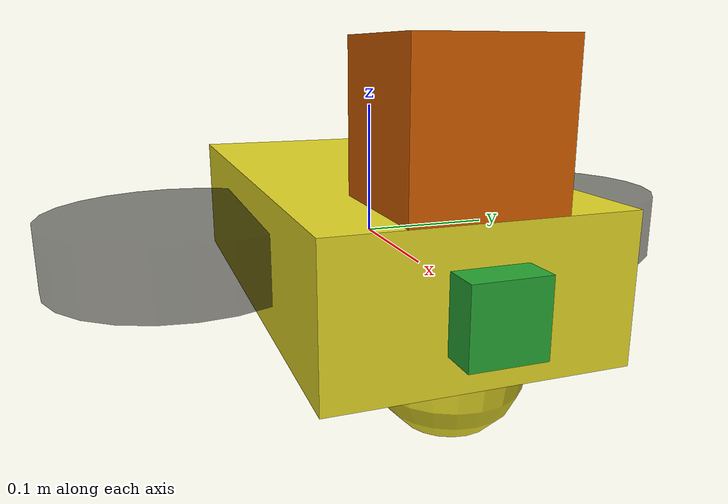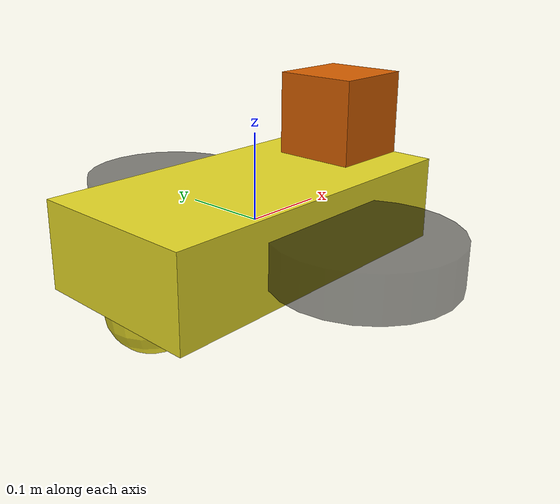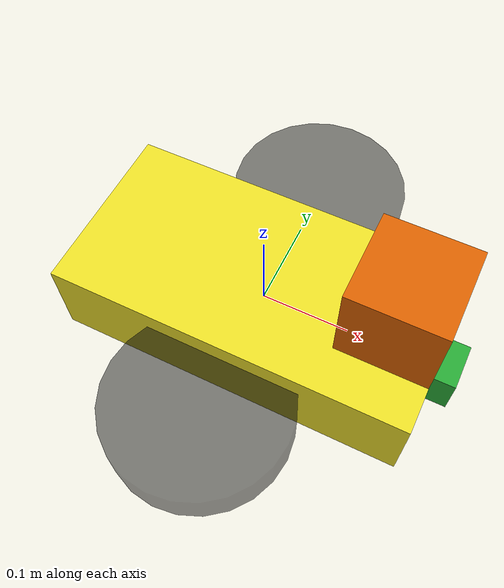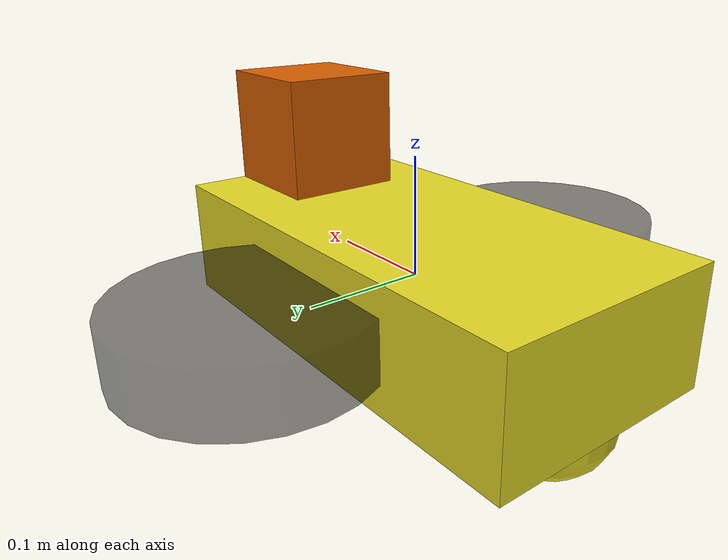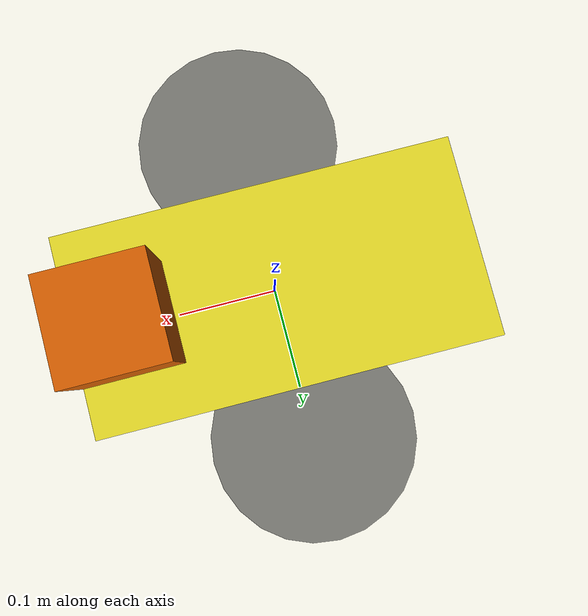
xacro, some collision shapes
<?xml version='1.0'?>
<robot name="udacity_bot" xmlns:xacro="http://www.ros.org/wiki/xacro">
    <xacro:include filename="$(find udacity_bot)/urdf/common.xacro"/>
    <xacro:include filename="$(find udacity_bot)/urdf/udacity_bot.gazebo"/>

    <link name="robot_footprint"></link>

    <joint name="robot_footprint_joint" type="fixed">
        <origin xyz="0 0 0" rpy="0 0 0" />
        <parent link="robot_footprint"/>
        <child link="chassis" />
    </joint>

    <link name='chassis'>
        <pose>0 0 0.1 0 0 0</pose>

        <inertial>
            <mass value="15.0"/>
            <origin xyz="0.0 0 0" rpy=" 0 0 0"/>
            <inertia
                ixx="0.1" ixy="0" ixz="0"
                iyy="0.1" iyz="0"
                izz="0.1"
                />
        </inertial>

        <collision name='collision'>
            <origin xyz="0 0 0" rpy=" 0 0 0"/>
            <geometry>
                <box size=".4 .2 .1"/>
            </geometry>
        </collision>

        <visual name='chassis_visual'>
            <origin xyz="0 0 0" rpy=" 0 0 0"/>
            <geometry>
                <box size=".4 .2 .1"/>
            </geometry>
        </visual>

        <collision name='back_caster_collision'>
            <origin xyz="-0.15 0 -0.05" rpy=" 0 0 0"/>
            <geometry>
                <sphere radius="0.0499"/>
            </geometry>
        </collision>

        <visual name='back_caster_visual'>
            <origin xyz="-0.15 0 -0.05" rpy=" 0 0 0"/>
            <geometry>
                <sphere radius="0.05"/>
            </geometry>
        </visual>

        <collision name='front_caster_collision'>
            <origin xyz="0.15 0 -0.05" rpy=" 0 0 0"/>
            <geometry>
                <sphere radius="0.0499"/>
            </geometry>
        </collision>

        <visual name='front_caster_visual'>
            <origin xyz="0.15 0 -0.05" rpy=" 0 0 0"/>
            <geometry>
                <sphere radius="0.05"/>
            </geometry>
        </visual>

    </link>

    <xacro:wheel wheel_prefix="left" wheel_mass="5" wheel_radius="0.1" wheel_thickness="0.05" parent="chassis">
		<origin xyz="0 0.15 0" rpy="${-pi/2} 0 0"/>
    </xacro:wheel>
    <xacro:wheel wheel_prefix="right" wheel_mass="5" wheel_radius="0.1" wheel_thickness="0.05" parent="chassis">
		<origin xyz="0 -0.15 0" rpy="${-pi/2} 0 0"/>
    </xacro:wheel>

    <link name="camera">
        <inertial>
            <mass value="0.1"/>
            <inertia ixx="1e-6" ixy="0" ixz="0" iyy="1e-6" iyz="0" izz="1e-6"/>
        </inertial>
        <visual>
            <origin xyz="0 0 0" rpy="0 0 0"/>
            <geometry>
                <box size="0.05 0.05 0.05"/>
            </geometry>
        </visual>
        <collision>
            <origin xyz="0 0 0" rpy="0 0 0"/>
            <geometry>
                <box size="0.05 0.05 0.05"/>
            </geometry>
        </collision>
    </link>

    <joint name="camera_joint" type="fixed">
        <parent link="chassis"/>
        <child link="camera"/>
        <origin xyz="0.2 0 0" rpy="0 0 0"/>
    </joint>

    <link name="laser">
        <inertial>
            <mass value="0.1"/>
            <inertia ixx="1e-6" ixy="0" ixz="0" iyy="1e-6" iyz="0" izz="1e-6"/>
        </inertial>
        <visual>
            <geometry>
                <mesh filename="package://udacity_bot/meshes/hokuyo.dae"/>
            </geometry>
        </visual>
        <collision>
            <geometry>
                <box size="0.1 0.1 0.1"/>
            </geometry>
        </collision>
    </link>

    <joint name="laser_joint" type="fixed">
        <parent link="chassis"/>
        <child link="laser"/>
        <origin xyz="0.15 0 0.1" rpy="0 0 0"/>
    </joint>

</robot>

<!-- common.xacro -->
<robot name="common" xmlns:xacro="http://ros.org/wiki/xacro">

	<!-- units begin -->
	<xacro:property name="inch" value="0.0254"/>
	<xacro:property name="lb" value="0.453592"/>
	<xacro:property name="deg" value="${pi/180.0}"/>
	<!-- units end -->

    <!-- inertial begin -->
    <xacro:macro name="cylinder_inertia" params="m r h">
		<inertia  ixx="${m*(3*r*r+h*h)/12}" ixy = "0" ixz = "0"
			iyy="${m*(3*r*r+h*h)/12}" iyz = "0"
			izz="${m*r*r/2}"
			/>
	</xacro:macro>
	<xacro:macro name="box_inertia" params="x y z mass">
		<inertia ixx="${0.0833333 * mass * (y*y + z*z)}" ixy="0.0" ixz="0.0"
			iyy="${0.0833333 * mass * (x*x + z*z)}" iyz="0.0"
			izz="${0.0833333 * mass * (x*x + y*y)}" />
	</xacro:macro>

    <xacro:macro name="sphere_inertia" params="r m">
		<inertia ixx="${0.4*m*r*r}" ixy="0.0" ixz="0.0"
			iyy="${0.4*m*r*r}" iyz="0.0"
			izz="${0.4*m*r*r}" />
    </xacro:macro>
    <!-- inertial end -->

	<xacro:macro name="wheel" params="wheel_prefix wheel_mass wheel_radius wheel_thickness parent *origin">
		<link name="${wheel_prefix}_wheel_link">
			<inertial>
				<mass value="${wheel_mass}"/>
				<cylinder_inertia m="${wheel_mass}" r="${wheel_radius}" h="${wheel_thickness}"/>
			</inertial>
			<visual>
				<origin xyz="0 0 0" rpy="${pi/2} 0 0"/>
				<geometry>
					<cylinder length="${wheel_thickness}" radius="${wheel_radius}"/>
				</geometry>
				<material name="black">
					<color rgba="0 0 0 0.5"/>
				</material>
			</visual>
			<collision>
				<origin xyz="0.0 0.0 0" rpy="${pi/2} 0 0"/>
				<geometry>
					<cylinder length="${wheel_thickness}" radius="${wheel_radius}"/>
				</geometry>
			</collision>
		</link>

		<joint name="${wheel_prefix}_wheel_joint" type="continuous">
			<parent link="${parent}"/>
			<child link="${wheel_prefix}_wheel_link"/>
			<xacro:insert_block name="origin"/>
			<axis xyz="0 1 0" rpy="0 0 0"/>
			<limit effort="10000" velocity="1000"/>
			<dynamics damping="1.0" friction="1.0"/>
		</joint>

		<transmission name="${wheel_prefix}_wheel_transmission">
			<type>transmission_interface/SimpleTransmission</type>
			<actuator name="${wheel_prefix}_wheel_motor">
				<hardwareInterface>hardware_interface/VelocityJointInterface</hardwareInterface>
				<mechanicalReduction>1</mechanicalReduction>
			</actuator>
			<joint name="${wheel_prefix}_wheel_joint">
				<hardwareInterface>hardware_interface/VelocityJointInterface</hardwareInterface>
			</joint>
		</transmission>
	</xacro:macro>

</robot>
